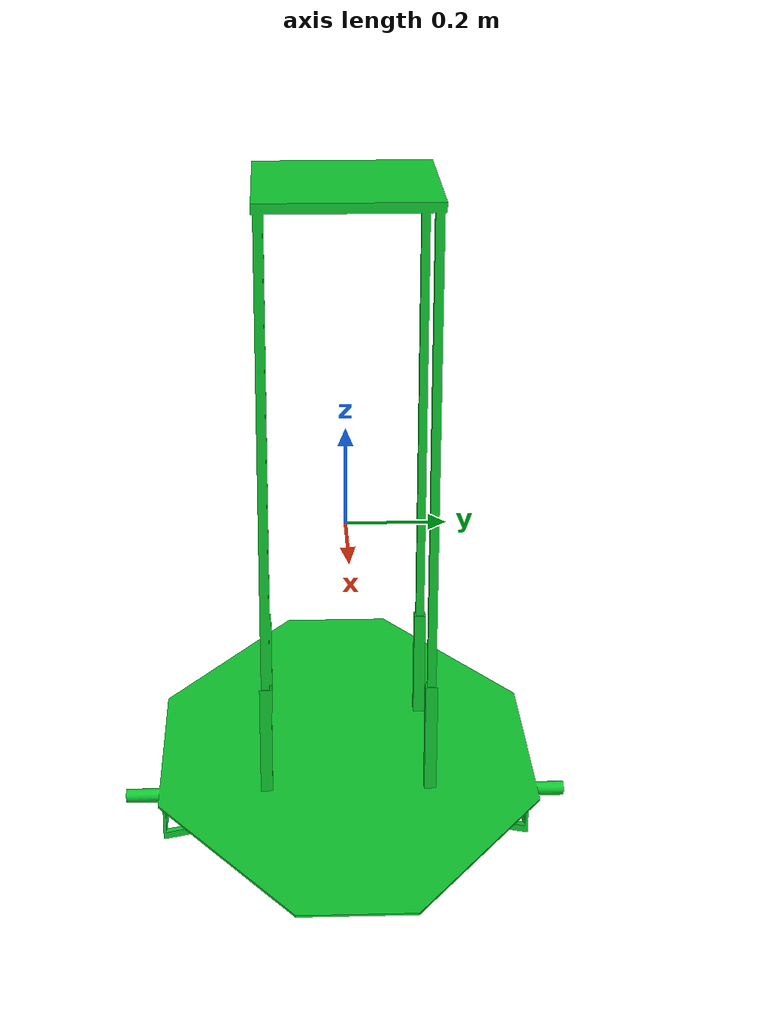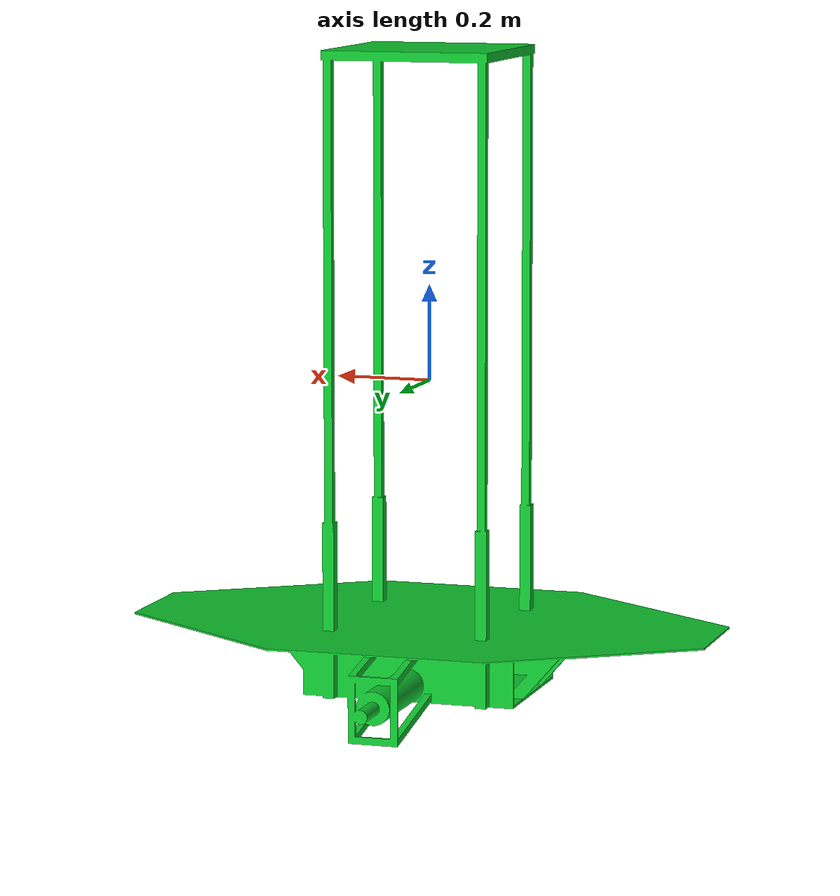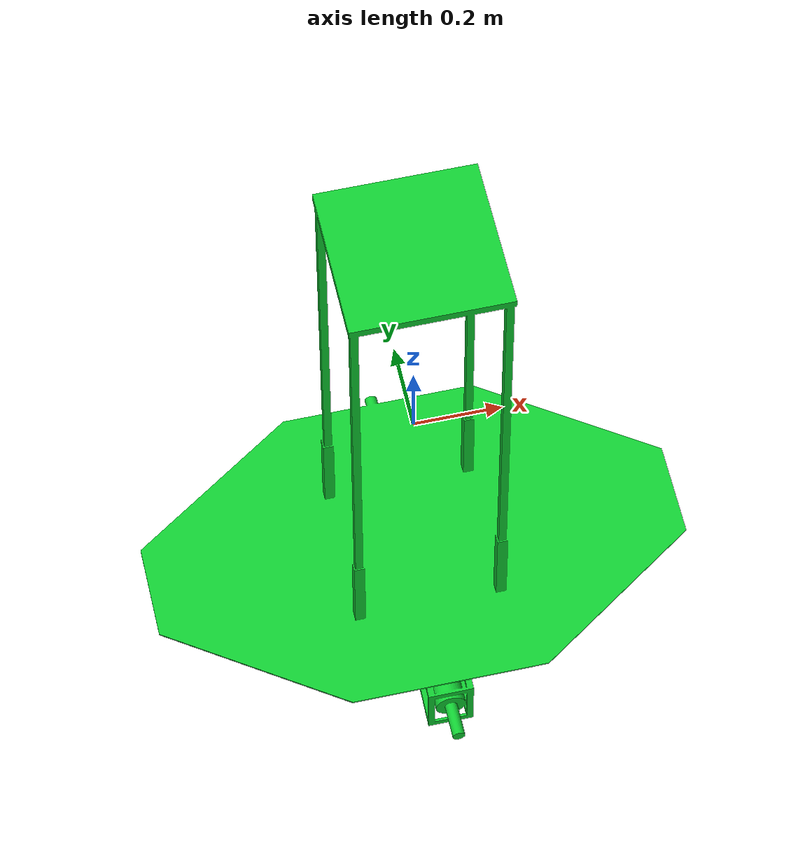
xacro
<?xml version="1.0"?>
<robot name="chassis" xmlns:xacro="http://ros.org/wiki/xacro">
    <!-- Includes -->
    <xacro:include filename="$(find description)/urdf/constants.xacro"/>
    <xacro:include filename="$(find description)/urdf/inertias.xacro"/>

    <!-- Chassis link definition; chassis link is associated with the centroid of the bounding box of the robot and the chassis_link.dae file-->
    <link name="${tf_prefix}/chassis_link">
        <visual>
            <origin rpy="0 0 0" xyz="0 0 0"/>
            <geometry>
                <mesh filename="package://description/urdf/meshes/chassis_link.dae"/>
            </geometry>
        </visual>

        <collision>
            <origin rpy="0 0 0" xyz="0 0 0"/>
            <geometry>
                <mesh filename="package://description/urdf/meshes/chassis_link.dae"/>
            </geometry>
        </collision>

        <inertial>
            <mass value="${chassis_link_mass}"/>
            <xacro:chassis_link_inertia/>
        </inertial>
    </link>
</robot>

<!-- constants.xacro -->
<robot name="caffeine_constants" xmlns:xacro="http://ros.org/wiki/xacro">
    <!-- Caffeine -->
    <xacro:property name="robotNamespace" value="caffeine"/>
    <xacro:property name="tf_prefix" value="caffeine"/>

    <!-- Drivebase -->
   <xacro:property name="base_length" value="1.268"/>
   <xacro:property name="base_width" value="0.764"/>
   <xacro:property name="base_height" value="0.01"/>

    <!-- Chassis -->
    <xacro:property name="chassis_to_base_link_dist" value="0.501747"/>
    <xacro:property name="chassis_to_stand_link_dist" value="0.698253"/>

    <xacro:property name="chassis_link_mass" value="33.9"/>

    <!-- Stand -->
    <xacro:property name="stand_length" value="0.412"/>
    <xacro:property name="stand_width" value="0.254"/>
    <xacro:property name="stand_height" value="1.324"/>
    <xacro:property name="stand_mass" value="1.0"/>

    <!-- Casters -->
    <xacro:property name="caster_link_mass" value="1.2"/>

    <xacro:property name="casters_separation" value="1.12"/>
    <xacro:property name="caster_vertical_offset" value="-0.619167561"/>

    <xacro:property name="caster_wheel_mass" value="0.7"/>

    <xacro:property name="caster_link_to_wheel_dist_x" value="0.03621719"/>
    <xacro:property name="caster_link_to_wheel_dist_z" value="-0.04361749"/>

    <!-- Battery -->
    <xacro:property name="battery_width" value="0.05"/>
    <xacro:property name="battery_length" value="0.1"/>
    <xacro:property name="battery_height" value="0.05"/>
    <!-- HACK/FIX: Left very heavy to ensure for 3-wheel drive, caffeine doesn't tilt forward-->
    <xacro:property name="battery_mass" value="33"/>

    <xacro:property name="battery_back_offset" value="0.17"/>

    <!-- Wheels -->
    <!-- TODO: Update acceleration and torque parameters when known -->
    <xacro:property name="wheel_vertical_offset" value="-0.61759696"/>

    <xacro:property name="wheel_left_joint" value="left_wheel_joint"/>
    <xacro:property name="wheel_right_joint" value="right_wheel_joint"/>

    <xacro:property name="wheels_separation" value="0.875"/>
    <xacro:property name="wheel_diameter" value="0.25"/>

    <xacro:property name="wheel_acceleration" value="1.0"/>
    <xacro:property name="wheel_torque" value="20"/>

    <xacro:property name="wheel_mass" value="4.45"/>

    <!-- Gazebo Motor -->
    <xacro:property name="diff_drive_update_rate" value="30.0"/>

    <xacro:property name="diff_drive_commandTopic" value="cmd_vel"/>
    <xacro:property name="diff_drive_odometryTopic" value="odom"/>

    <xacro:property name="diff_drive_odometryFrame" value="odom"/>
    <xacro:property name="diff_drive_robotBaseFrame" value="base_link"/>

    <xacro:property name="diff_drive_odometrySource" value="encoder"/>

    <xacro:property name="diff_drive_publishWheelTF" value="false"/>
    <xacro:property name="diff_drive_publishOdomTF" value="false"/>
    <xacro:property name="diff_drive_publishTf" value="true"/>
    <xacro:property name="diff_drive_publishWheelJointState" value="true"/>

    <xacro:property name="diff_drive_legacymode" value="false"/>
    <xacro:property name="diff_drive_rosDebugLevel" value="na"/>

    <!-- Hokuyo 2D LIDAR sensor -->
    <xacro:property name="laser_visualize" value="false"/>
    <xacro:property name="laser_update_rate" value="10"/>

    <xacro:property name="laser_horizontal_samples" value="1080"/>
    <xacro:property name="laser_horizontal_resolution" value="1"/>
    <xacro:property name="laser_field_of_view" value="270"/>
    <xacro:property name="laser_horizontal_min_angle" value="${-0.5*laser_field_of_view*pi/180}"/>
    <xacro:property name="laser_horizontal_max_angle" value="${0.5*laser_field_of_view*pi/180}"/>

    <xacro:property name="laser_range_min" value="0.06"/>
    <xacro:property name="laser_range_max" value="4.095"/>
    <xacro:property name="laser_resolution_angle" value="0.36"/>
    <xacro:property name="laser_range_resolution" value="${laser_resolution_angle*pi/180}"/>

    <xacro:property name="laser_noise_type" value="gaussian"/>
    <xacro:property name="laser_noise_mean" value="0.0"/>
    <xacro:property name="laser_noise_stddev" value="0.01/3"/>

    <xacro:property name="laser_topicName" value="scan"/>
    <xacro:property name="laser_frameName" value="base_laser"/>

    <xacro:property name="laser_length" value="0.05"/>
    <xacro:property name="laser_width" value="0.05"/>
    <xacro:property name="laser_height" value="0.07"/>
    <xacro:property name="laser_mass" value="0.16"/>

    <xacro:property name="laser_x_dist" value="${base_length/2 - 2*laser_length}"/>
    <xacro:property name="laser_z_dist" value="${laser_height/2}"/>

    <!-- ZED camera -->
    <!-- NOTE: approx as a rectangular prism -->
    <xacro:property name="ZED_camera_mass" value="0.1587573"/>
    <xacro:property name="ZED_camera_length" value="0.175"/>
    <xacro:property name="ZED_camera_width" value="0.03"/>
    <xacro:property name="ZED_camera_height" value="0.033"/>
    <xacro:property name="ZED_camera_pitch" value="${15 * pi/180}"/>
    <!-- ZED image height/width corresponds to image size for 60Hz refresh-->
    <xacro:property name="ZED_image_refresh" value="60"/>
    <xacro:property name="ZED_image_width" value="3840"/>
    <xacro:property name="ZED_image_height" value="1080"/>
    <xacro:property name="ZED_image_format" value="R8G8B8"/>
    <xacro:property name="ZED_image_hfov" value="${90 * pi/180}"/>

    <xacro:property name="ZED_name" value="zed/zed_node"/>
    <xacro:property name="ZED_always_on" value="true"/>
    <xacro:property name="ZED_update_rate" value="0"/>
    <xacro:property name="ZED_image_topicName" value="image_raw_color"/>
    <xacro:property name="ZED_image_info_topicName" value="camera_info"/>
    <xacro:property name="ZED_depth_topicName" value="depth/image_raw"/>
    <xacro:property name="ZED_depth_info_topicName" value="depth/camera_info"/>
    <xacro:property name="ZED_depth_points_topicName" value="depth/points"/>
    <xacro:property name="ZED_frameName" value="zed_camera_link_optical"/>

    <!-- Garmin GPS -->
    <!-- NOTE: approx. as a cylinder, Garmin itself is similar to a hockey puck -->
    <xacro:property name="gps_diam" value="0.061"/>
    <xacro:property name="gps_length" value="0.0195"/>
    <xacro:property name="gps_mass" value="0.165"/>

    <xacro:property name="gps_frame" value="gps_link"/>
    <xacro:property name="gps_topic" value="gps/fix"/>
    <xacro:property name="gps_vel_topic" value="gps/fix_velocity"/>
    <xacro:property name="gps_update_rate" value="5.0"/>

    <!-- NOTE: GPS coordinates for UofT St. George Campus -->
    <xacro:property name="ref_lat" value="43.6570"/>
    <xacro:property name="ref_lon" value="-79.3903"/>
    <xacro:property name="ref_alt" value="76.0000"/>

    <xacro:property name="gps_drift" value="1.5 1.5 1.5"/>
    <xacro:property name="gps_vel_drift" value="0.00 0.00 0.00"/>

    <!-- Phidget IMU -->
   <xacro:property name="phidget_length" value="0.04"/>
   <xacro:property name="phidget_width" value="0.0375"/>
   <xacro:property name="phidget_height" value="0.01"/>
   <xacro:property name="phidget_mass" value="0.04"/>

   <xacro:property name="imu_frame" value="imu_link"/>
   <xacro:property name="imu_topic" value="imu/data"/>
   <xacro:property name="imu_update_rate" value="128.0"/>
</robot>

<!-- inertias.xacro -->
<robot name="caffeine_inertias" xmlns:xacro="http://ros.org/wiki/xacro">
    <!-- Chassis -->
    <xacro:macro name="chassis_link_inertia">
        <inertia
            ixx="10.9364" ixy="0.0000" ixz="0.0000"
            iyx="0.0000" iyy="10.9070" iyz="0.0000"
            izx="0.0000" izy="0.0000" izz="2.3961"
        />
    </xacro:macro>

    <!-- Wheels -->
    <xacro:macro name="side_wheel_inertia">
        <inertia
            ixx="0.0231" ixy="0.0000" ixz="0.0000"
            iyx="0.0000" iyy="0.0374" iyz="0.0000"
            izx="0.0000" izy="0.0000" izz="0.0231"
        />
    </xacro:macro>

    <!-- Box Inertia -->
    <xacro:macro name="box_inertia" params="mass length width height">
        <inertia
            ixx="${mass * (height*height + length*length)/12.0}" ixy="0.0" ixz="0.0"
            iyx="0.0" iyy="${mass * (width*width + length*length)/12.0}" iyz="0.0"
            izx="0.0" izy="0.0" izz="${mass * (width*width + height*height)/12.0}"
        />
    </xacro:macro>

    <!-- Cynlinder Inertia -->
    <xacro:macro name="cylinder_inertia" params="mass length radius">
        <inertia
            ixx="${mass * (3*radius*radius + length*length)/12.0}" ixy="0.0" ixz="0.0"
            iyx="0.0" iyy="${mass * (3*radius*radius + length*length)/12.0}" iyz="0.0"
            izx="0.0" izy="0.0" izz="${0.5*mass*radius*radius}"
        />
    </xacro:macro>

     <!-- Sphere Inertia -->
     <xacro:macro name="sphere_inertia" params="mass radius">
         <inertia
             ixx="${(2.0 * mass * radius * radius) / 5.0}" ixy="0.0" ixz="0.0"
             iyx="0.0" iyy="${(2.0 * mass * radius * radius) / 5.0}" iyz="0.0"
             izx="0.0" izy="0.0" izz="${(2.0 * mass * radius * radius) / 5.0}"
         />
     </xacro:macro>

     <!-- Casters and casters wheel inertias -->
     <xacro:macro name="caster_link_inertia">
        <inertia
           ixx="0.0020" ixy="0.0000" ixz="0.0000"
           iyx="0.0000" iyy="0.0020" iyz="0.0000"
           izx="0.0000" izy="0.0000" izz="0.0008"
        />
    </xacro:macro>

    <xacro:macro name="caster_wheel_inertia">
        <inertia
           ixx="0.0012" ixy="0.0000" ixz="0.0000"
           iyx="0.0000" iyy="0.0022" iyz="0.0000"
           izx="0.0000" izy="0.0000" izz="0.0012"
        />
    </xacro:macro>

 </robot>
